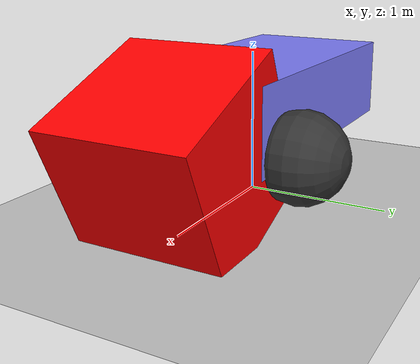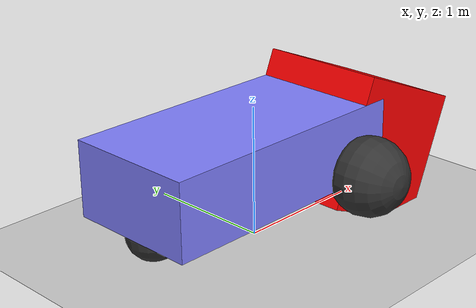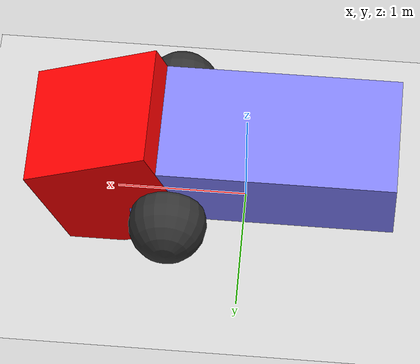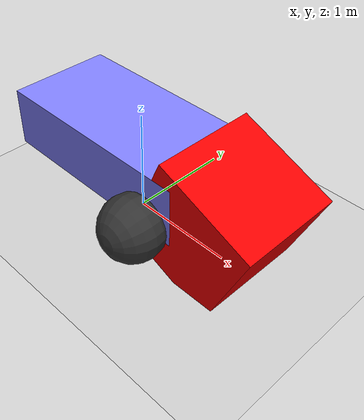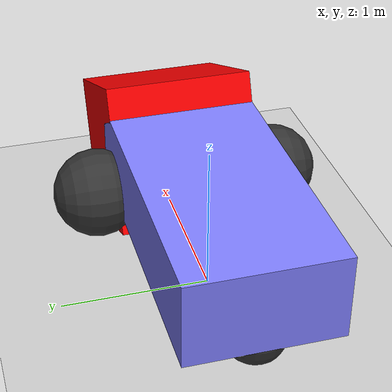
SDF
<?xml version="1.0" ?>
<sdf version="1.8">
    <world name="model">
        <physics name="1ms" type="ignored">
          <max_step_size>0.001</max_step_size>
          <real_time_factor>1.0</real_time_factor>
        </physics>
        <plugin
          filename="gz-sim-physics-system"
          name="gz::sim::systems::Physics">
        </plugin>
        <plugin
          filename="gz-sim-user-commands-system"
          name="gz::sim::systems::UserCommands">
        </plugin>
        <plugin
          filename="gz-sim-scene-broadcaster-system"
          name="gz::sim::systems::SceneBroadcaster">
        </plugin>
        <plugin
          filename="gz-sim-contact-system"
          name="gz::sim::systems::Contact">
        </plugin>

        <light type="directional" name="sun">
          <cast_shadows>true</cast_shadows>
          <pose>0 0 10 0 0 0</pose>
          <diffuse>0.8 0.8 0.8 1</diffuse>
          <specular>0.2 0.2 0.2 1</specular>
          <attenuation>
            <range>1000</range>
            <constant>0.9</constant>
            <linear>0.01</linear>
            <quadratic>0.001</quadratic>
          </attenuation>
          <direction>-0.5 0.1 -0.9</direction>
        </light>

        <model name="box">
          <pose>1 0 0.5 0 0.4 0</pose>
          <link name="box_link">
            <inertial>
              <inertia>
                <ixx>0.16666</ixx>
                <ixy>0</ixy>
                <ixz>0</ixz>
                <iyy>0.16666</iyy>
                <iyz>0</iyz>
                <izz>0.16666</izz>
              </inertia>
              <mass>1.0</mass>
            </inertial>
            <collision name="box_collision">
              <geometry>
                <box>
                  <size>1 1 1</size>
                </box>
              </geometry>
            </collision>

            <visual name="box_visual">
              <geometry>
                <box>
                  <size>1 1 1</size>
                </box>
              </geometry>
              <material>
                <ambient>1 0 0 1</ambient>
                <diffuse>1 0 0 1</diffuse>
                <specular>1 0 0 1</specular>
              </material>
            </visual>
          </link>
        </model>

        <model name="ground_plane">
          <static>true</static>
          <link name="link">
            <collision name="collision">
              <geometry>
                <plane>
                  <normal>0 0 1</normal>
                  <size>100 100</size>
                </plane>
              </geometry>
            </collision>
            <visual name="visual">
              <geometry>
                <plane>
                  <normal>0 0 1</normal>
                  <size>100 100</size>
                </plane>
              </geometry>
              <material>
                <ambient>0.8 0.8 0.8 1</ambient>
                <diffuse>0.8 0.8 0.8 1</diffuse>
                <specular>0.8 0.8 0.8 1</specular>
              </material>
            </visual>
          </link>
        </model>

        <model name='vehicle'>
          <pose>0 0 0.5 0 0 0</pose>
          <link name='chassis'>
            <pose>-0.151427 -0 0.175 0 -0 0</pose>
            <inertial>
              <mass>1.14395</mass>
              <inertia>
                <ixx>0.126164</ixx>
                <ixy>0</ixy>
                <ixz>0</ixz>
                <iyy>0.416519</iyy>
                <iyz>0</iyz>
                <izz>0.481014</izz>
              </inertia>
            </inertial>
            <visual name='visual_chassis'>
              <geometry>
                <box>
                  <size>2.01142 1 0.568726</size>
                </box>
              </geometry>
              <material>
                <ambient>0.5 0.5 1.0 1</ambient>
                <diffuse>0.5 0.5 1.0 1</diffuse>
                <specular>0.0 0.0 1.0 1</specular>
              </material>
            </visual>
            <collision name='collision_chassis'>
              <geometry>
                <box>
                  <size>2.01142 1 0.568726</size>
                </box>
              </geometry>
            </collision>
          </link>

          <link name='left_wheel'>
            <pose>0.554283 0.625029 -0.025 -1.5707 0 0</pose>
            <inertial>
              <mass>2</mass>
              <inertia>
                <ixx>0.145833</ixx>
                <ixy>0</ixy>
                <ixz>0</ixz>
                <iyy>0.145833</iyy>
                <iyz>0</iyz>
                <izz>0.125</izz>
              </inertia>
            </inertial>
            <visual name='visual_left_wheel'>
              <geometry>
                <sphere>
                  <radius>0.3</radius>
                </sphere>
              </geometry>
              <material>
                <ambient>0.2 0.2 0.2 1</ambient>
                <diffuse>0.2 0.2 0.2 1</diffuse>
                <specular>0.2 0.2 0.2 1</specular>
              </material>
            </visual>
            <collision name='collision_left_wheel'>
              <geometry>
                <sphere>
                  <radius>0.3</radius>
                </sphere>
              </geometry>
            </collision>
          </link>

          <link name='right_wheel'>
            <pose>0.554282 -0.625029 -0.025 -1.5707 0 0</pose>
            <inertial>
              <mass>2</mass>
              <inertia>
                <ixx>0.145833</ixx>
                <ixy>0</ixy>
                <ixz>0</ixz>
                <iyy>0.145833</iyy>
                <iyz>0</iyz>
                <izz>0.125</izz>
              </inertia>
            </inertial>
            <visual name='visual_right_wheel'>
              <geometry>
                <sphere>
                  <radius>0.3</radius>
                </sphere>
              </geometry>
              <material>
                <ambient>0.2 0.2 0.2 1</ambient>
                <diffuse>0.2 0.2 0.2 1</diffuse>
                <specular>0.2 0.2 0.2 1</specular>
              </material>
            </visual>
            <collision name='collision_right_wheel'>
              <geometry>
                <sphere>
                  <radius>0.3</radius>
                </sphere>
              </geometry>
            </collision>
          </link>

          <link name='caster'>
            <pose>-0.957138 -0 -0.125 0 -0 0</pose>
            <inertial>
              <mass>1</mass>
              <inertia>
                <ixx>0.1</ixx>
                <ixy>0</ixy>
                <ixz>0</ixz>
                <iyy>0.1</iyy>
                <iyz>0</iyz>
                <izz>0.1</izz>
              </inertia>
            </inertial>
            <visual name='visual_caster'>
              <geometry>
                <sphere>
                  <radius>0.2</radius>
                </sphere>
              </geometry>
              <material>
                <ambient>0.2 0.2 0.2 1</ambient>
                <diffuse>0.2 0.2 0.2 1</diffuse>
                <specular>0.2 0.2 0.2 1</specular>
              </material>
            </visual>
            <collision name='collision_caster'>
              <geometry>
                <sphere>
                  <radius>0.2</radius>
                </sphere>
              </geometry>
            </collision>
          </link>

          <joint name='left_wheel_joint' type='revolute'>
            <parent>chassis</parent>
            <child>left_wheel</child>
            <axis>
              <xyz>0 0 1</xyz>
              <limit>
                <lower>-1.79769e+308</lower>
                <upper>1.79769e+308</upper>
              </limit>
            </axis>
          </joint>

          <joint name='right_wheel_joint' type='revolute'>
            <parent>chassis</parent>
            <child>right_wheel</child>
            <axis>
              <xyz>0 0 1</xyz>
              <limit>
                <lower>-1.79769e+308</lower>
                <upper>1.79769e+308</upper>
              </limit>
            </axis>
          </joint>

          <joint name='caster_wheel' type='ball'>
            <parent>chassis</parent>
            <child>caster</child>
          </joint>
          <plugin name="gz::sim::systems::JointStatePublisher" filename="gz-sim-joint-state-publisher-system"/>

          <plugin
            filename="ignition-gazebo-diff-drive-system"
            name="ignition::gazebo::systems::DiffDrive">
            <left_joint>left_wheel_joint</left_joint>
            <right_joint>right_wheel_joint</right_joint>
            <wheel_separation>1.25</wheel_separation>
            <wheel_radius>0.3</wheel_radius>
            <odom_publish_frequency>1</odom_publish_frequency>
            <max_linear_acceleration>1</max_linear_acceleration>
            <min_linear_acceleration>-1</min_linear_acceleration>
            <max_angular_acceleration>2</max_angular_acceleration>
            <min_angular_acceleration>-2</min_angular_acceleration>
            <max_linear_velocity>0.5</max_linear_velocity>
            <min_linear_velocity>-0.5</min_linear_velocity>
            <max_angular_velocity>1</max_angular_velocity>
            <min_angular_velocity>-1</min_angular_velocity>
          </plugin>

        </model>
    </world>
</sdf>
